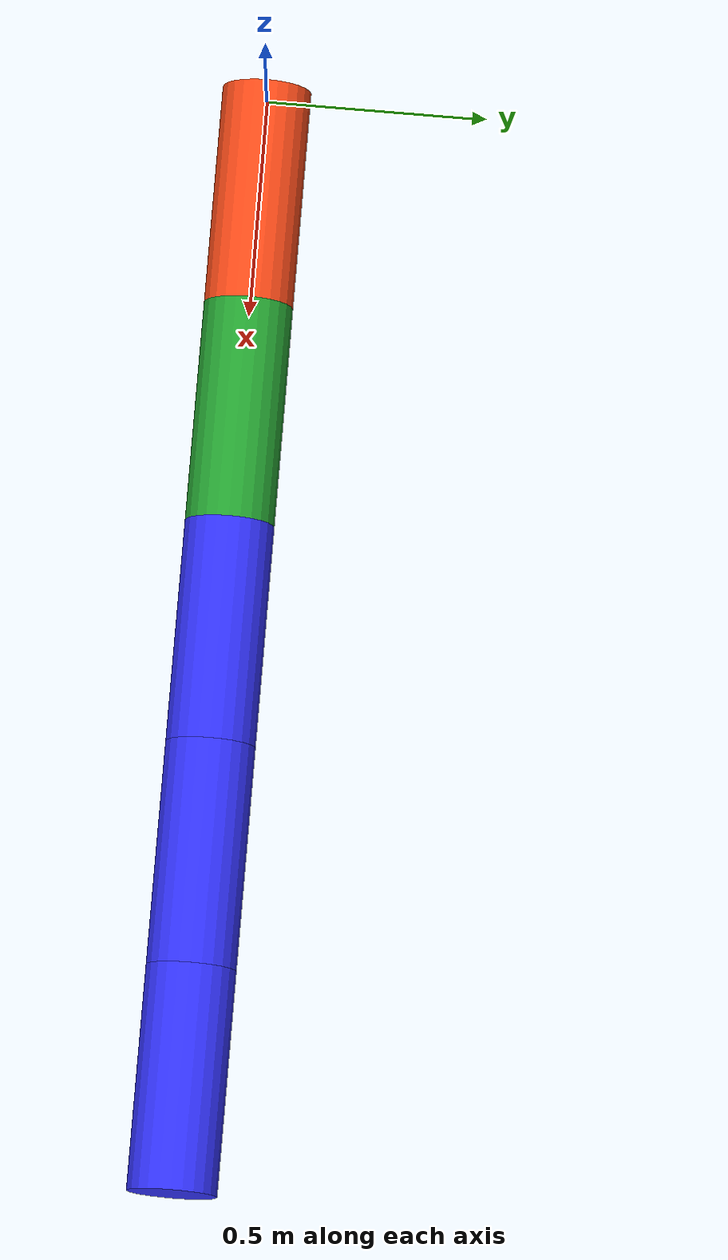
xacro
<?xml version="1.0"?>
<robot xmlns:xacro="http://www.ros.org/wiki/xacro"  name="robot">

    <!-- This is an example of a URDF. -->
    <!-- As we move through the file, new things to note will be pointed out. -->
    <!-- It's not meant an example of GOOD design, but an example of some of the various features of URDF/xacro. -->

    <!-- This will include all the contents of example_include.xacro first. Go check it out! -->
    <xacro:include filename="example_include.xacro" />

    <!-- - We use the "property" feature to define the arm length and radius and use them multiple times -->
    <!-- - The visual/collision origin is set to halfway along the length (similar to the box), but also with a rotation (again using the mathematical features). -->
    <!--   This is because the cylinder extends along the Z axis by default, but we want it to be along the X axis (when the joint is at 0) -->

    <xacro:property name="length" value="0.5" />
    <xacro:property name="radius" value="0.1" />
    <xacro:property name="mass" value="14 "/>

    <link name="base_link">
        <visual>
            <origin xyz="${length/2} 0 ${radius}" rpy="0 ${pi/2} 0"/>
            <geometry>
                <cylinder length="${length}" radius="${radius}" />
            </geometry>
            <material name="orange" />
        </visual>
        <collision>
            <origin xyz="${length/2} 0 ${radius}" rpy="0 ${pi/2} 0"/>
            <geometry>
                <cylinder length="${length}" radius="${radius}" />
            </geometry>
        </collision>
        <xacro:inertial_cylinder mass="${mass}" length="${length}" radius="${radius}">
            <origin xyz="${length/2} 0 ${radius}" rpy="0 ${pi/2} 0"/>
        </xacro:inertial_cylinder>
    </link>

    <joint name="joint_12" type="revolute">
        <origin xyz="${length} 0 ${radius}" rpy="0 0 0"/>
        <parent link="base_link"/>
        <child link="link_2"/>
        <axis xyz="0 0 1"/>
        <limit lower="${-pi/2}" upper="${pi/2}" effort="100" velocity="100"/>
    </joint>

    <link name="link_2">
        <visual>
            <origin xyz="${length/2} 0 0" rpy="0 ${pi/2} 0"/>
            <geometry>
                <cylinder length="${length}" radius="${radius}" />
            </geometry>
            <material name="green"/>
        </visual>
        <collision>
            <origin xyz="${length/2} 0 0" rpy="0 ${pi/2} 0"/>
            <geometry>
                <cylinder length="${length}" radius="${radius}" />
            </geometry>
        </collision>
        <xacro:inertial_cylinder mass="${mass}" length="${length}" radius="${radius}">
            <origin xyz="${length/2} 0 0" rpy="0 ${pi/2} 0"/>
        </xacro:inertial_cylinder>
    </link>

    <joint name="joint_23" type="revolute">
        <origin xyz="${length} 0 0" rpy="0 0 0"/>
        <parent link="link_2"/>
        <child link="link_3"/>
        <axis xyz="0 0 1"/>
        <limit lower="${-pi/2}" upper="${pi/2}" effort="100" velocity="100"/>
    </joint>

    <link name="link_3">
        <visual>
            <origin xyz="${length/2} 0 0" rpy="0 ${pi/2} 0"/>
            <geometry>
                <cylinder length="${length}" radius="${radius}" />
            </geometry>
            <material name="blue"/>
        </visual>
        <collision>
            <origin xyz="${length/2} 0 0" rpy="0 ${pi/2} 0"/>
            <geometry>
                <cylinder length="${length}" radius="${radius}" />
            </geometry>
        </collision>
        <xacro:inertial_cylinder mass="${mass}" length="${length}" radius="${radius}">
            <origin xyz="${length/2} 0 0" rpy="0 ${pi/2} 0"/>
        </xacro:inertial_cylinder>
    </link>

    <joint name="joint_34" type="revolute">
        <origin xyz="${length} 0 0" rpy="0 0 0"/>
        <parent link="link_3"/>
        <child link="link_4"/>
        <axis xyz="0 0 1"/>
        <limit lower="${-pi/2}" upper="${pi/2}" effort="100" velocity="100"/>
    </joint>

    <link name="link_4">
        <visual>
            <origin xyz="${length/2} 0 0" rpy="0 ${pi/2} 0"/>
            <geometry>
                <cylinder length="${length}" radius="${radius}" />
            </geometry>
            <material name="blue"/>
        </visual>
        <collision>
            <origin xyz="${length/2} 0 0" rpy="0 ${pi/2} 0"/>
            <geometry>
                <cylinder length="${length}" radius="${radius}" />
            </geometry>
        </collision>
        <xacro:inertial_cylinder mass="${mass}" length="${length}" radius="${radius}">
            <origin xyz="${length/2} 0 0" rpy="0 ${pi/2} 0"/>
        </xacro:inertial_cylinder>
    </link>

    <joint name="joint_45" type="revolute">
        <origin xyz="${length} 0 0" rpy="0 0 0"/>
        <parent link="link_4"/>
        <child link="link_5"/>
        <axis xyz="0 0 1"/>
        <limit lower="${-pi/2}" upper="${pi/2}" effort="100" velocity="100"/>
    </joint>

    <link name="link_5">
        <visual>
            <origin xyz="${length/2} 0 0" rpy="0 ${pi/2} 0"/>
            <geometry>
                <cylinder length="${length}" radius="${radius}" />
            </geometry>
            <material name="blue"/>
        </visual>
        <collision>
            <origin xyz="${length/2} 0 0" rpy="0 ${pi/2} 0"/>
            <geometry>
                <cylinder length="${length}" radius="${radius}" />
            </geometry>
        </collision>
        <xacro:inertial_cylinder mass="${mass}" length="${length}" radius="${radius}">
            <origin xyz="${length/2} 0 0" rpy="0 ${pi/2} 0"/>
        </xacro:inertial_cylinder>
    </link>

    <xacro:include filename="example_gazebo.xacro" />

</robot>

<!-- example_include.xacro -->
<robot xmlns:xacro="http://www.ros.org/wiki/xacro" >
    <!-- This file is not a robot in and of itself, it just contains some
         useful tags that could be included in any robot -->

    <!-- Specify some colours -->
    <material name="white">
        <color rgba="1 1 1 1"/>
    </material>

    <material name="orange">
        <color rgba="1 0.3 0.1 1"/>
    </material>

    <material name="blue">
        <color rgba="0.2 0.2 1 1"/>
    </material>

    <!-- Specify some standard inertial calculations
         https://en.wikipedia.org/wiki/List_of_moments_of_inertia
         These make use of xacro's mathematical functionality -->
    <xacro:macro name="inertial_sphere" params="mass radius *origin">
        <inertial>
            <xacro:insert_block name="origin"/>
            <mass value="${mass}" />
            <inertia ixx="${(2/5) * mass * (radius*radius)}" ixy="0.0" ixz="0.0"
                    iyy="${(2/5) * mass * (radius*radius)}" iyz="0.0"
                    izz="${(2/5) * mass * (radius*radius)}" />
        </inertial>
    </xacro:macro>

    <xacro:macro name="inertial_box" params="mass x y z *origin">
        <inertial>
            <xacro:insert_block name="origin"/>
            <mass value="${mass}" />
            <inertia ixx="${(1/12) * mass * (y*y+z*z)}" ixy="0.0" ixz="0.0"
                    iyy="${(1/12) * mass * (x*x+z*z)}" iyz="0.0"
                    izz="${(1/12) * mass * (x*x+y*y)}" />
        </inertial>
    </xacro:macro>

    <xacro:macro name="inertial_cylinder" params="mass length radius *origin">
        <inertial>
            <xacro:insert_block name="origin"/>
            <mass value="${mass}" />
            <inertia ixx="${(1/12) * mass * (3*radius*radius + length*length)}"
                ixy="0.0" ixz="0.0"
                iyy="${(1/12) * mass * (3*radius*radius + length*length)}"
                iyz="0.0" izz="${(1/2) * mass * (radius*radius)}" />
        </inertial>
    </xacro:macro>
</robot>
